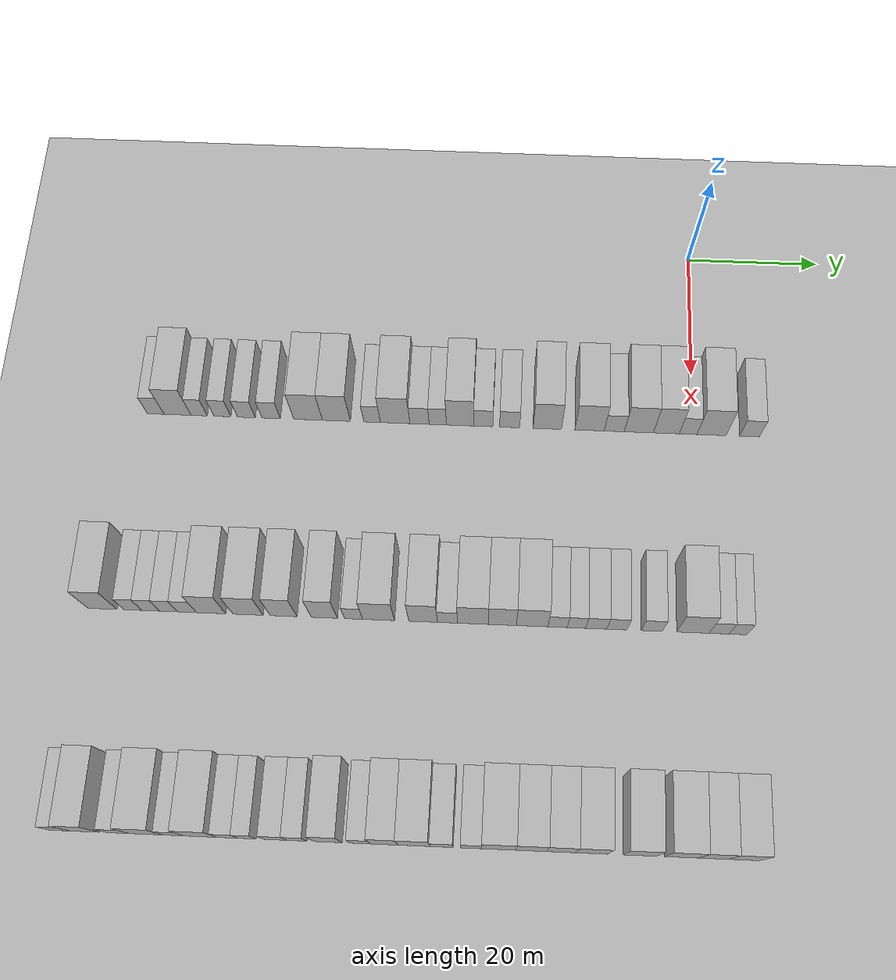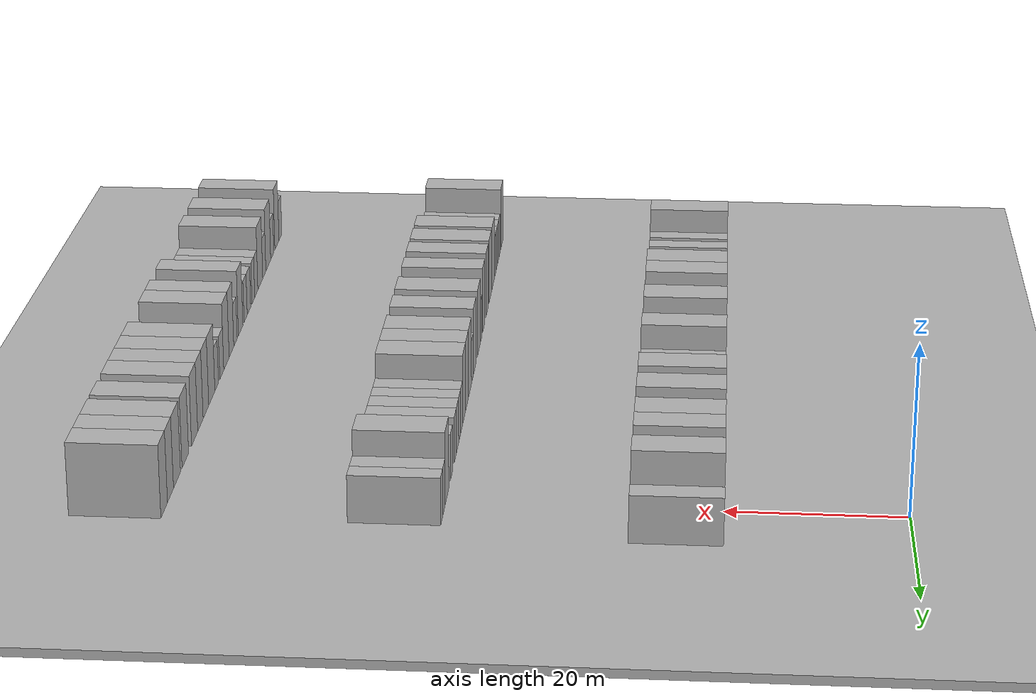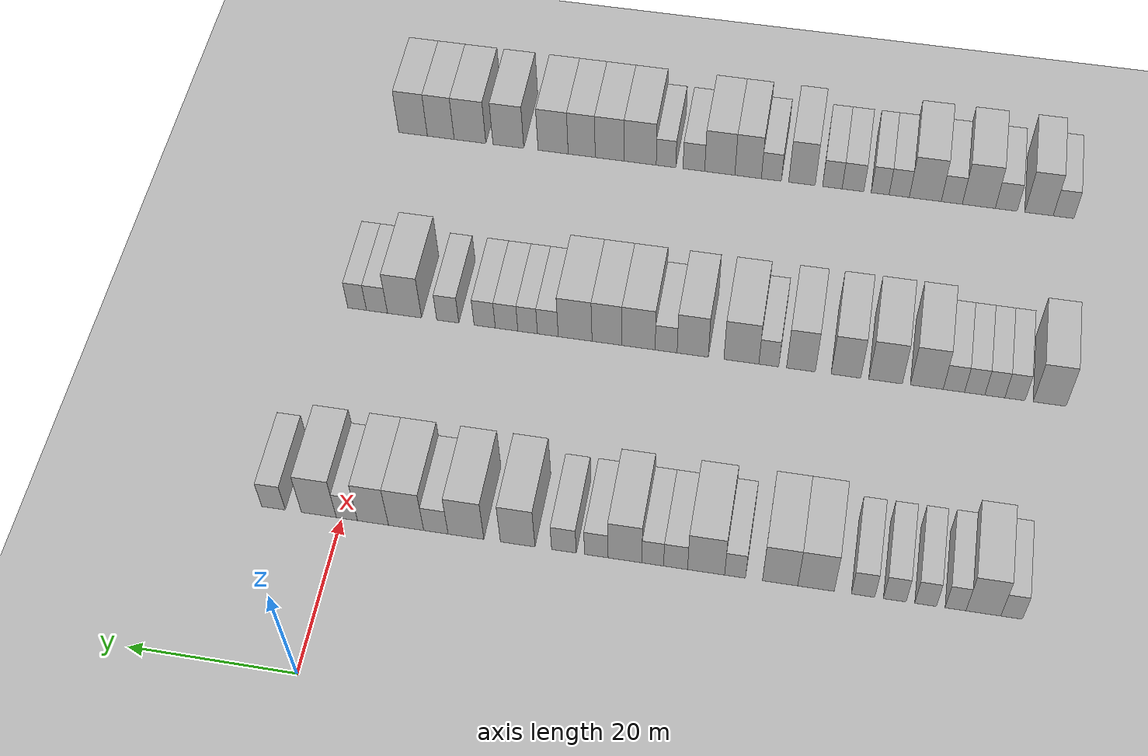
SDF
<sdf version="1.6">
 <world name="default">
  <include><name>ground_plane_1</name><uri>model://HANNAS_ground_plane</uri></include>
  <include>
   <name>ground_plane_2</name>
   <uri>model://HANNAS_ground_plane</uri>
   <pose>100 0 0  0 0 0</pose>
  </include>
  <model name="building_42">
   <static>1</static>
   <pose>25.0000 -79.7452 0 0.000000 0.000000 0.000000</pose>
   <link name="link">
    <pose>0 0 3.00 0 0 0</pose>
    <collision name="collision"><geometry><box><size>10.0000 2.4832 6.0000</size></box></geometry></collision>
    <visual name="visual">
     <cast_shadows>0</cast_shadows>
     <geometry><box><size>10.0000 2.4832 6.0000</size></box></geometry>
     <material>
      <script>
       <uri>model://HANNAS_wall/materials/scripts</uri>
       <uri>model://HANNAS_wall/materials/textures</uri>
       <name>vrc/HANNAS_wall</name>
      </script>
     </material>
    </visual>
   </link>
  </model>
  <model name="building_43">
   <static>1</static>
   <pose>25.0000 -76.4897 0 0.000000 0.000000 0.000000</pose>
   <link name="link">
    <pose>0 0 4.50 0 0 0</pose>
    <collision name="collision"><geometry><box><size>10.0000 4.0279 9.0000</size></box></geometry></collision>
    <visual name="visual">
     <cast_shadows>0</cast_shadows>
     <geometry><box><size>10.0000 4.0279 9.0000</size></box></geometry>
     <material>
      <script>
       <uri>model://HANNAS_wall/materials/scripts</uri>
       <uri>model://HANNAS_wall/materials/textures</uri>
       <name>vrc/HANNAS_wall</name>
      </script>
     </material>
    </visual>
   </link>
  </model>
  <model name="building_44">
   <static>1</static>
   <pose>25.0000 -73.2714 0 0.000000 0.000000 0.000000</pose>
   <link name="link">
    <pose>0 0 3.00 0 0 0</pose>
    <collision name="collision"><geometry><box><size>10.0000 2.4085 6.0000</size></box></geometry></collision>
    <visual name="visual">
     <cast_shadows>0</cast_shadows>
     <geometry><box><size>10.0000 2.4085 6.0000</size></box></geometry>
     <material>
      <script>
       <uri>model://HANNAS_wall/materials/scripts</uri>
       <uri>model://HANNAS_wall/materials/textures</uri>
       <name>vrc/HANNAS_wall</name>
      </script>
     </material>
    </visual>
   </link>
  </model>
  <model name="building_45">
   <static>1</static>
   <pose>25.0000 -69.8093 0 0.000000 0.000000 0.000000</pose>
   <link name="link">
    <pose>0 0 3.00 0 0 0</pose>
    <collision name="collision"><geometry><box><size>10.0000 2.5157 6.0000</size></box></geometry></collision>
    <visual name="visual">
     <cast_shadows>0</cast_shadows>
     <geometry><box><size>10.0000 2.5157 6.0000</size></box></geometry>
     <material>
      <script>
       <uri>model://HANNAS_wall/materials/scripts</uri>
       <uri>model://HANNAS_wall/materials/textures</uri>
       <name>vrc/HANNAS_wall</name>
      </script>
     </material>
    </visual>
   </link>
  </model>
  <model name="building_46">
   <static>1</static>
   <pose>25.0000 -66.2287 0 0.000000 0.000000 0.000000</pose>
   <link name="link">
    <pose>0 0 3.00 0 0 0</pose>
    <collision name="collision"><geometry><box><size>10.0000 2.6454 6.0000</size></box></geometry></collision>
    <visual name="visual">
     <cast_shadows>0</cast_shadows>
     <geometry><box><size>10.0000 2.6454 6.0000</size></box></geometry>
     <material>
      <script>
       <uri>model://HANNAS_wall/materials/scripts</uri>
       <uri>model://HANNAS_wall/materials/textures</uri>
       <name>vrc/HANNAS_wall</name>
      </script>
     </material>
    </visual>
   </link>
  </model>
  <model name="building_47">
   <static>1</static>
   <pose>25.0000 -62.5404 0 0.000000 0.000000 0.000000</pose>
   <link name="link">
    <pose>0 0 3.00 0 0 0</pose>
    <collision name="collision"><geometry><box><size>10.0000 2.7313 6.0000</size></box></geometry></collision>
    <visual name="visual">
     <cast_shadows>0</cast_shadows>
     <geometry><box><size>10.0000 2.7313 6.0000</size></box></geometry>
     <material>
      <script>
       <uri>model://HANNAS_wall/materials/scripts</uri>
       <uri>model://HANNAS_wall/materials/textures</uri>
       <name>vrc/HANNAS_wall</name>
      </script>
     </material>
    </visual>
   </link>
  </model>
  <model name="building_48">
   <static>1</static>
   <pose>25.0000 -57.0368 0 0.000000 0.000000 0.000000</pose>
   <link name="link">
    <pose>0 0 4.50 0 0 0</pose>
    <collision name="collision"><geometry><box><size>10.0000 4.2758 9.0000</size></box></geometry></collision>
    <visual name="visual">
     <cast_shadows>0</cast_shadows>
     <geometry><box><size>10.0000 4.2758 9.0000</size></box></geometry>
     <material>
      <script>
       <uri>model://HANNAS_wall/materials/scripts</uri>
       <uri>model://HANNAS_wall/materials/textures</uri>
       <name>vrc/HANNAS_wall</name>
      </script>
     </material>
    </visual>
   </link>
  </model>
  <model name="building_49">
   <static>1</static>
   <pose>25.0000 -52.8208 0 0.000000 0.000000 0.000000</pose>
   <link name="link">
    <pose>0 0 4.50 0 0 0</pose>
    <collision name="collision"><geometry><box><size>10.0000 4.1561 9.0000</size></box></geometry></collision>
    <visual name="visual">
     <cast_shadows>0</cast_shadows>
     <geometry><box><size>10.0000 4.1561 9.0000</size></box></geometry>
     <material>
      <script>
       <uri>model://HANNAS_wall/materials/scripts</uri>
       <uri>model://HANNAS_wall/materials/textures</uri>
       <name>vrc/HANNAS_wall</name>
      </script>
     </material>
    </visual>
   </link>
  </model>
  <model name="building_50">
   <static>1</static>
   <pose>25.0000 -47.5101 0 0.000000 0.000000 0.000000</pose>
   <link name="link">
    <pose>0 0 3.00 0 0 0</pose>
    <collision name="collision"><geometry><box><size>10.0000 2.4654 6.0000</size></box></geometry></collision>
    <visual name="visual">
     <cast_shadows>0</cast_shadows>
     <geometry><box><size>10.0000 2.4654 6.0000</size></box></geometry>
     <material>
      <script>
       <uri>model://HANNAS_wall/materials/scripts</uri>
       <uri>model://HANNAS_wall/materials/textures</uri>
       <name>vrc/HANNAS_wall</name>
      </script>
     </material>
    </visual>
   </link>
  </model>
  <model name="building_51">
   <static>1</static>
   <pose>25.0000 -44.0812 0 0.000000 0.000000 0.000000</pose>
   <link name="link">
    <pose>0 0 4.50 0 0 0</pose>
    <collision name="collision"><geometry><box><size>10.0000 4.3923 9.0000</size></box></geometry></collision>
    <visual name="visual">
     <cast_shadows>0</cast_shadows>
     <geometry><box><size>10.0000 4.3923 9.0000</size></box></geometry>
     <material>
      <script>
       <uri>model://HANNAS_wall/materials/scripts</uri>
       <uri>model://HANNAS_wall/materials/textures</uri>
       <name>vrc/HANNAS_wall</name>
      </script>
     </material>
    </visual>
   </link>
  </model>
  <model name="building_52">
   <static>1</static>
   <pose>25.0000 -40.4654 0 0.000000 0.000000 0.000000</pose>
   <link name="link">
    <pose>0 0 3.00 0 0 0</pose>
    <collision name="collision"><geometry><box><size>10.0000 2.8393 6.0000</size></box></geometry></collision>
    <visual name="visual">
     <cast_shadows>0</cast_shadows>
     <geometry><box><size>10.0000 2.8393 6.0000</size></box></geometry>
     <material>
      <script>
       <uri>model://HANNAS_wall/materials/scripts</uri>
       <uri>model://HANNAS_wall/materials/textures</uri>
       <name>vrc/HANNAS_wall</name>
      </script>
     </material>
    </visual>
   </link>
  </model>
  <model name="building_53">
   <static>1</static>
   <pose>25.0000 -37.7545 0 0.000000 0.000000 0.000000</pose>
   <link name="link">
    <pose>0 0 3.00 0 0 0</pose>
    <collision name="collision"><geometry><box><size>10.0000 2.5824 6.0000</size></box></geometry></collision>
    <visual name="visual">
     <cast_shadows>0</cast_shadows>
     <geometry><box><size>10.0000 2.5824 6.0000</size></box></geometry>
     <material>
      <script>
       <uri>model://HANNAS_wall/materials/scripts</uri>
       <uri>model://HANNAS_wall/materials/textures</uri>
       <name>vrc/HANNAS_wall</name>
      </script>
     </material>
    </visual>
   </link>
  </model>
  <model name="building_54">
   <static>1</static>
   <pose>25.0000 -34.4420 0 0.000000 0.000000 0.000000</pose>
   <link name="link">
    <pose>0 0 4.50 0 0 0</pose>
    <collision name="collision"><geometry><box><size>10.0000 4.0427 9.0000</size></box></geometry></collision>
    <visual name="visual">
     <cast_shadows>0</cast_shadows>
     <geometry><box><size>10.0000 4.0427 9.0000</size></box></geometry>
     <material>
      <script>
       <uri>model://HANNAS_wall/materials/scripts</uri>
       <uri>model://HANNAS_wall/materials/textures</uri>
       <name>vrc/HANNAS_wall</name>
      </script>
     </material>
    </visual>
   </link>
  </model>
  <model name="building_55">
   <static>1</static>
   <pose>25.0000 -31.0102 0 0.000000 0.000000 0.000000</pose>
   <link name="link">
    <pose>0 0 3.00 0 0 0</pose>
    <collision name="collision"><geometry><box><size>10.0000 2.8209 6.0000</size></box></geometry></collision>
    <visual name="visual">
     <cast_shadows>0</cast_shadows>
     <geometry><box><size>10.0000 2.8209 6.0000</size></box></geometry>
     <material>
      <script>
       <uri>model://HANNAS_wall/materials/scripts</uri>
       <uri>model://HANNAS_wall/materials/textures</uri>
       <name>vrc/HANNAS_wall</name>
      </script>
     </material>
    </visual>
   </link>
  </model>
  <model name="building_56">
   <static>1</static>
   <pose>25.0000 -27.1176 0 0.000000 0.000000 0.000000</pose>
   <link name="link">
    <pose>0 0 3.00 0 0 0</pose>
    <collision name="collision"><geometry><box><size>10.0000 2.9644 6.0000</size></box></geometry></collision>
    <visual name="visual">
     <cast_shadows>0</cast_shadows>
     <geometry><box><size>10.0000 2.9644 6.0000</size></box></geometry>
     <material>
      <script>
       <uri>model://HANNAS_wall/materials/scripts</uri>
       <uri>model://HANNAS_wall/materials/textures</uri>
       <name>vrc/HANNAS_wall</name>
      </script>
     </material>
    </visual>
   </link>
  </model>
  <model name="building_57">
   <static>1</static>
   <pose>25.0000 -21.5413 0 0.000000 0.000000 0.000000</pose>
   <link name="link">
    <pose>0 0 4.50 0 0 0</pose>
    <collision name="collision"><geometry><box><size>10.0000 4.1881 9.0000</size></box></geometry></collision>
    <visual name="visual">
     <cast_shadows>0</cast_shadows>
     <geometry><box><size>10.0000 4.1881 9.0000</size></box></geometry>
     <material>
      <script>
       <uri>model://HANNAS_wall/materials/scripts</uri>
       <uri>model://HANNAS_wall/materials/textures</uri>
       <name>vrc/HANNAS_wall</name>
      </script>
     </material>
    </visual>
   </link>
  </model>
  <model name="building_58">
   <static>1</static>
   <pose>25.0000 -15.2742 0 0.000000 0.000000 0.000000</pose>
   <link name="link">
    <pose>0 0 4.50 0 0 0</pose>
    <collision name="collision"><geometry><box><size>10.0000 4.3461 9.0000</size></box></geometry></collision>
    <visual name="visual">
     <cast_shadows>0</cast_shadows>
     <geometry><box><size>10.0000 4.3461 9.0000</size></box></geometry>
     <material>
      <script>
       <uri>model://HANNAS_wall/materials/scripts</uri>
       <uri>model://HANNAS_wall/materials/textures</uri>
       <name>vrc/HANNAS_wall</name>
      </script>
     </material>
    </visual>
   </link>
  </model>
  <model name="building_59">
   <static>1</static>
   <pose>25.0000 -11.6156 0 0.000000 0.000000 0.000000</pose>
   <link name="link">
    <pose>0 0 3.00 0 0 0</pose>
    <collision name="collision"><geometry><box><size>10.0000 2.9710 6.0000</size></box></geometry></collision>
    <visual name="visual">
     <cast_shadows>0</cast_shadows>
     <geometry><box><size>10.0000 2.9710 6.0000</size></box></geometry>
     <material>
      <script>
       <uri>model://HANNAS_wall/materials/scripts</uri>
       <uri>model://HANNAS_wall/materials/textures</uri>
       <name>vrc/HANNAS_wall</name>
      </script>
     </material>
    </visual>
   </link>
  </model>
  <model name="building_60">
   <static>1</static>
   <pose>25.0000 -7.9813 0 0.000000 0.000000 0.000000</pose>
   <link name="link">
    <pose>0 0 4.50 0 0 0</pose>
    <collision name="collision"><geometry><box><size>10.0000 4.2976 9.0000</size></box></geometry></collision>
    <visual name="visual">
     <cast_shadows>0</cast_shadows>
     <geometry><box><size>10.0000 4.2976 9.0000</size></box></geometry>
     <material>
      <script>
       <uri>model://HANNAS_wall/materials/scripts</uri>
       <uri>model://HANNAS_wall/materials/textures</uri>
       <name>vrc/HANNAS_wall</name>
      </script>
     </material>
    </visual>
   </link>
  </model>
  <model name="building_61">
   <static>1</static>
   <pose>25.0000 -3.9279 0 0.000000 0.000000 0.000000</pose>
   <link name="link">
    <pose>0 0 4.50 0 0 0</pose>
    <collision name="collision"><geometry><box><size>10.0000 3.8093 9.0000</size></box></geometry></collision>
    <visual name="visual">
     <cast_shadows>0</cast_shadows>
     <geometry><box><size>10.0000 3.8093 9.0000</size></box></geometry>
     <material>
      <script>
       <uri>model://HANNAS_wall/materials/scripts</uri>
       <uri>model://HANNAS_wall/materials/textures</uri>
       <name>vrc/HANNAS_wall</name>
      </script>
     </material>
    </visual>
   </link>
  </model>
  <model name="building_62">
   <static>1</static>
   <pose>25.0000 -0.7198 0 0.000000 0.000000 0.000000</pose>
   <link name="link">
    <pose>0 0 3.00 0 0 0</pose>
    <collision name="collision"><geometry><box><size>10.0000 2.6068 6.0000</size></box></geometry></collision>
    <visual name="visual">
     <cast_shadows>0</cast_shadows>
     <geometry><box><size>10.0000 2.6068 6.0000</size></box></geometry>
     <material>
      <script>
       <uri>model://HANNAS_wall/materials/scripts</uri>
       <uri>model://HANNAS_wall/materials/textures</uri>
       <name>vrc/HANNAS_wall</name>
      </script>
     </material>
    </visual>
   </link>
  </model>
  <model name="building_63">
   <static>1</static>
   <pose>25.0000 2.7324 0 0.000000 0.000000 0.000000</pose>
   <link name="link">
    <pose>0 0 4.50 0 0 0</pose>
    <collision name="collision"><geometry><box><size>10.0000 4.2978 9.0000</size></box></geometry></collision>
    <visual name="visual">
     <cast_shadows>0</cast_shadows>
     <geometry><box><size>10.0000 4.2978 9.0000</size></box></geometry>
     <material>
      <script>
       <uri>model://HANNAS_wall/materials/scripts</uri>
       <uri>model://HANNAS_wall/materials/textures</uri>
       <name>vrc/HANNAS_wall</name>
      </script>
     </material>
    </visual>
   </link>
  </model>
  <model name="building_64">
   <static>1</static>
   <pose>25.0000 8.3389 0 0.000000 0.000000 0.000000</pose>
   <link name="link">
    <pose>0 0 3.00 0 0 0</pose>
    <collision name="collision"><geometry><box><size>10.0000 2.9151 6.0000</size></box></geometry></collision>
    <visual name="visual">
     <cast_shadows>0</cast_shadows>
     <geometry><box><size>10.0000 2.9151 6.0000</size></box></geometry>
     <material>
      <script>
       <uri>model://HANNAS_wall/materials/scripts</uri>
       <uri>model://HANNAS_wall/materials/textures</uri>
       <name>vrc/HANNAS_wall</name>
      </script>
     </material>
    </visual>
   </link>
  </model>
  <model name="building_188">
   <static>1</static>
   <pose>55.0000 -83.1391 0 0.000000 0.000000 0.000000</pose>
   <link name="link">
    <pose>0 0 4.50 0 0 0</pose>
    <collision name="collision"><geometry><box><size>10.0000 4.0843 9.0000</size></box></geometry></collision>
    <visual name="visual">
     <cast_shadows>0</cast_shadows>
     <geometry><box><size>10.0000 4.0843 9.0000</size></box></geometry>
     <material>
      <script>
       <uri>model://HANNAS_wall/materials/scripts</uri>
       <uri>model://HANNAS_wall/materials/textures</uri>
       <name>vrc/HANNAS_wall</name>
      </script>
     </material>
    </visual>
   </link>
  </model>
  <model name="building_189">
   <static>1</static>
   <pose>55.0000 -78.8417 0 0.000000 0.000000 0.000000</pose>
   <link name="link">
    <pose>0 0 3.00 0 0 0</pose>
    <collision name="collision"><geometry><box><size>10.0000 2.5105 6.0000</size></box></geometry></collision>
    <visual name="visual">
     <cast_shadows>0</cast_shadows>
     <geometry><box><size>10.0000 2.5105 6.0000</size></box></geometry>
     <material>
      <script>
       <uri>model://HANNAS_wall/materials/scripts</uri>
       <uri>model://HANNAS_wall/materials/textures</uri>
       <name>vrc/HANNAS_wall</name>
      </script>
     </material>
    </visual>
   </link>
  </model>
  <model name="building_190">
   <static>1</static>
   <pose>55.0000 -76.3441 0 0.000000 0.000000 0.000000</pose>
   <link name="link">
    <pose>0 0 3.00 0 0 0</pose>
    <collision name="collision"><geometry><box><size>10.0000 2.4847 6.0000</size></box></geometry></collision>
    <visual name="visual">
     <cast_shadows>0</cast_shadows>
     <geometry><box><size>10.0000 2.4847 6.0000</size></box></geometry>
     <material>
      <script>
       <uri>model://HANNAS_wall/materials/scripts</uri>
       <uri>model://HANNAS_wall/materials/textures</uri>
       <name>vrc/HANNAS_wall</name>
      </script>
     </material>
    </visual>
   </link>
  </model>
  <model name="building_191">
   <static>1</static>
   <pose>55.0000 -73.8349 0 0.000000 0.000000 0.000000</pose>
   <link name="link">
    <pose>0 0 3.00 0 0 0</pose>
    <collision name="collision"><geometry><box><size>10.0000 2.5338 6.0000</size></box></geometry></collision>
    <visual name="visual">
     <cast_shadows>0</cast_shadows>
     <geometry><box><size>10.0000 2.5338 6.0000</size></box></geometry>
     <material>
      <script>
       <uri>model://HANNAS_wall/materials/scripts</uri>
       <uri>model://HANNAS_wall/materials/textures</uri>
       <name>vrc/HANNAS_wall</name>
      </script>
     </material>
    </visual>
   </link>
  </model>
  <model name="building_192">
   <static>1</static>
   <pose>55.0000 -71.2370 0 0.000000 0.000000 0.000000</pose>
   <link name="link">
    <pose>0 0 3.00 0 0 0</pose>
    <collision name="collision"><geometry><box><size>10.0000 2.6620 6.0000</size></box></geometry></collision>
    <visual name="visual">
     <cast_shadows>0</cast_shadows>
     <geometry><box><size>10.0000 2.6620 6.0000</size></box></geometry>
     <material>
      <script>
       <uri>model://HANNAS_wall/materials/scripts</uri>
       <uri>model://HANNAS_wall/materials/textures</uri>
       <name>vrc/HANNAS_wall</name>
      </script>
     </material>
    </visual>
   </link>
  </model>
  <model name="building_193">
   <static>1</static>
   <pose>55.0000 -67.8460 0 0.000000 0.000000 0.000000</pose>
   <link name="link">
    <pose>0 0 4.50 0 0 0</pose>
    <collision name="collision"><geometry><box><size>10.0000 4.1200 9.0000</size></box></geometry></collision>
    <visual name="visual">
     <cast_shadows>0</cast_shadows>
     <geometry><box><size>10.0000 4.1200 9.0000</size></box></geometry>
     <material>
      <script>
       <uri>model://HANNAS_wall/materials/scripts</uri>
       <uri>model://HANNAS_wall/materials/textures</uri>
       <name>vrc/HANNAS_wall</name>
      </script>
     </material>
    </visual>
   </link>
  </model>
  <model name="building_194">
   <static>1</static>
   <pose>55.0000 -62.6697 0 0.000000 0.000000 0.000000</pose>
   <link name="link">
    <pose>0 0 4.50 0 0 0</pose>
    <collision name="collision"><geometry><box><size>10.0000 4.2326 9.0000</size></box></geometry></collision>
    <visual name="visual">
     <cast_shadows>0</cast_shadows>
     <geometry><box><size>10.0000 4.2326 9.0000</size></box></geometry>
     <material>
      <script>
       <uri>model://HANNAS_wall/materials/scripts</uri>
       <uri>model://HANNAS_wall/materials/textures</uri>
       <name>vrc/HANNAS_wall</name>
      </script>
     </material>
    </visual>
   </link>
  </model>
  <model name="building_195">
   <static>1</static>
   <pose>55.0000 -57.6789 0 0.000000 0.000000 0.000000</pose>
   <link name="link">
    <pose>0 0 4.50 0 0 0</pose>
    <collision name="collision"><geometry><box><size>10.0000 3.7491 9.0000</size></box></geometry></collision>
    <visual name="visual">
     <cast_shadows>0</cast_shadows>
     <geometry><box><size>10.0000 3.7491 9.0000</size></box></geometry>
     <material>
      <script>
       <uri>model://HANNAS_wall/materials/scripts</uri>
       <uri>model://HANNAS_wall/materials/textures</uri>
       <name>vrc/HANNAS_wall</name>
      </script>
     </material>
    </visual>
   </link>
  </model>
  <model name="building_196">
   <static>1</static>
   <pose>55.0000 -51.9782 0 0.000000 0.000000 0.000000</pose>
   <link name="link">
    <pose>0 0 4.50 0 0 0</pose>
    <collision name="collision"><geometry><box><size>10.0000 3.6521 9.0000</size></box></geometry></collision>
    <visual name="visual">
     <cast_shadows>0</cast_shadows>
     <geometry><box><size>10.0000 3.6521 9.0000</size></box></geometry>
     <material>
      <script>
       <uri>model://HANNAS_wall/materials/scripts</uri>
       <uri>model://HANNAS_wall/materials/textures</uri>
       <name>vrc/HANNAS_wall</name>
      </script>
     </material>
    </visual>
   </link>
  </model>
  <model name="building_197">
   <static>1</static>
   <pose>55.0000 -47.8846 0 0.000000 0.000000 0.000000</pose>
   <link name="link">
    <pose>0 0 3.00 0 0 0</pose>
    <collision name="collision"><geometry><box><size>10.0000 2.5351 6.0000</size></box></geometry></collision>
    <visual name="visual">
     <cast_shadows>0</cast_shadows>
     <geometry><box><size>10.0000 2.5351 6.0000</size></box></geometry>
     <material>
      <script>
       <uri>model://HANNAS_wall/materials/scripts</uri>
       <uri>model://HANNAS_wall/materials/textures</uri>
       <name>vrc/HANNAS_wall</name>
      </script>
     </material>
    </visual>
   </link>
  </model>
  <model name="building_198">
   <static>1</static>
   <pose>55.0000 -44.3919 0 0.000000 0.000000 0.000000</pose>
   <link name="link">
    <pose>0 0 4.50 0 0 0</pose>
    <collision name="collision"><geometry><box><size>10.0000 4.4504 9.0000</size></box></geometry></collision>
    <visual name="visual">
     <cast_shadows>0</cast_shadows>
     <geometry><box><size>10.0000 4.4504 9.0000</size></box></geometry>
     <material>
      <script>
       <uri>model://HANNAS_wall/materials/scripts</uri>
       <uri>model://HANNAS_wall/materials/textures</uri>
       <name>vrc/HANNAS_wall</name>
      </script>
     </material>
    </visual>
   </link>
  </model>
  <model name="building_199">
   <static>1</static>
   <pose>55.0000 -38.1672 0 0.000000 0.000000 0.000000</pose>
   <link name="link">
    <pose>0 0 4.50 0 0 0</pose>
    <collision name="collision"><geometry><box><size>10.0000 3.9991 9.0000</size></box></geometry></collision>
    <visual name="visual">
     <cast_shadows>0</cast_shadows>
     <geometry><box><size>10.0000 3.9991 9.0000</size></box></geometry>
     <material>
      <script>
       <uri>model://HANNAS_wall/materials/scripts</uri>
       <uri>model://HANNAS_wall/materials/textures</uri>
       <name>vrc/HANNAS_wall</name>
      </script>
     </material>
    </visual>
   </link>
  </model>
  <model name="building_200">
   <static>1</static>
   <pose>55.0000 -34.7589 0 0.000000 0.000000 0.000000</pose>
   <link name="link">
    <pose>0 0 3.00 0 0 0</pose>
    <collision name="collision"><geometry><box><size>10.0000 2.8174 6.0000</size></box></geometry></collision>
    <visual name="visual">
     <cast_shadows>0</cast_shadows>
     <geometry><box><size>10.0000 2.8174 6.0000</size></box></geometry>
     <material>
      <script>
       <uri>model://HANNAS_wall/materials/scripts</uri>
       <uri>model://HANNAS_wall/materials/textures</uri>
       <name>vrc/HANNAS_wall</name>
      </script>
     </material>
    </visual>
   </link>
  </model>
  <model name="building_201">
   <static>1</static>
   <pose>55.0000 -31.2148 0 0.000000 0.000000 0.000000</pose>
   <link name="link">
    <pose>0 0 4.50 0 0 0</pose>
    <collision name="collision"><geometry><box><size>10.0000 4.2709 9.0000</size></box></geometry></collision>
    <visual name="visual">
     <cast_shadows>0</cast_shadows>
     <geometry><box><size>10.0000 4.2709 9.0000</size></box></geometry>
     <material>
      <script>
       <uri>model://HANNAS_wall/materials/scripts</uri>
       <uri>model://HANNAS_wall/materials/textures</uri>
       <name>vrc/HANNAS_wall</name>
      </script>
     </material>
    </visual>
   </link>
  </model>
  <model name="building_202">
   <static>1</static>
   <pose>55.0000 -27.1377 0 0.000000 0.000000 0.000000</pose>
   <link name="link">
    <pose>0 0 4.50 0 0 0</pose>
    <collision name="collision"><geometry><box><size>10.0000 3.8833 9.0000</size></box></geometry></collision>
    <visual name="visual">
     <cast_shadows>0</cast_shadows>
     <geometry><box><size>10.0000 3.8833 9.0000</size></box></geometry>
     <material>
      <script>
       <uri>model://HANNAS_wall/materials/scripts</uri>
       <uri>model://HANNAS_wall/materials/textures</uri>
       <name>vrc/HANNAS_wall</name>
      </script>
     </material>
    </visual>
   </link>
  </model>
  <model name="building_203">
   <static>1</static>
   <pose>55.0000 -22.9985 0 0.000000 0.000000 0.000000</pose>
   <link name="link">
    <pose>0 0 4.50 0 0 0</pose>
    <collision name="collision"><geometry><box><size>10.0000 4.3950 9.0000</size></box></geometry></collision>
    <visual name="visual">
     <cast_shadows>0</cast_shadows>
     <geometry><box><size>10.0000 4.3950 9.0000</size></box></geometry>
     <material>
      <script>
       <uri>model://HANNAS_wall/materials/scripts</uri>
       <uri>model://HANNAS_wall/materials/textures</uri>
       <name>vrc/HANNAS_wall</name>
      </script>
     </material>
    </visual>
   </link>
  </model>
  <model name="building_204">
   <static>1</static>
   <pose>55.0000 -19.4506 0 0.000000 0.000000 0.000000</pose>
   <link name="link">
    <pose>0 0 3.00 0 0 0</pose>
    <collision name="collision"><geometry><box><size>10.0000 2.7008 6.0000</size></box></geometry></collision>
    <visual name="visual">
     <cast_shadows>0</cast_shadows>
     <geometry><box><size>10.0000 2.7008 6.0000</size></box></geometry>
     <material>
      <script>
       <uri>model://HANNAS_wall/materials/scripts</uri>
       <uri>model://HANNAS_wall/materials/textures</uri>
       <name>vrc/HANNAS_wall</name>
      </script>
     </material>
    </visual>
   </link>
  </model>
  <model name="building_205">
   <static>1</static>
   <pose>55.0000 -16.8247 0 0.000000 0.000000 0.000000</pose>
   <link name="link">
    <pose>0 0 3.00 0 0 0</pose>
    <collision name="collision"><geometry><box><size>10.0000 2.5511 6.0000</size></box></geometry></collision>
    <visual name="visual">
     <cast_shadows>0</cast_shadows>
     <geometry><box><size>10.0000 2.5511 6.0000</size></box></geometry>
     <material>
      <script>
       <uri>model://HANNAS_wall/materials/scripts</uri>
       <uri>model://HANNAS_wall/materials/textures</uri>
       <name>vrc/HANNAS_wall</name>
      </script>
     </material>
    </visual>
   </link>
  </model>
  <model name="building_206">
   <static>1</static>
   <pose>55.0000 -14.0713 0 0.000000 0.000000 0.000000</pose>
   <link name="link">
    <pose>0 0 3.00 0 0 0</pose>
    <collision name="collision"><geometry><box><size>10.0000 2.9557 6.0000</size></box></geometry></collision>
    <visual name="visual">
     <cast_shadows>0</cast_shadows>
     <geometry><box><size>10.0000 2.9557 6.0000</size></box></geometry>
     <material>
      <script>
       <uri>model://HANNAS_wall/materials/scripts</uri>
       <uri>model://HANNAS_wall/materials/textures</uri>
       <name>vrc/HANNAS_wall</name>
      </script>
     </material>
    </visual>
   </link>
  </model>
  <model name="building_207">
   <static>1</static>
   <pose>55.0000 -11.1996 0 0.000000 0.000000 0.000000</pose>
   <link name="link">
    <pose>0 0 3.00 0 0 0</pose>
    <collision name="collision"><geometry><box><size>10.0000 2.7877 6.0000</size></box></geometry></collision>
    <visual name="visual">
     <cast_shadows>0</cast_shadows>
     <geometry><box><size>10.0000 2.7877 6.0000</size></box></geometry>
     <material>
      <script>
       <uri>model://HANNAS_wall/materials/scripts</uri>
       <uri>model://HANNAS_wall/materials/textures</uri>
       <name>vrc/HANNAS_wall</name>
      </script>
     </material>
    </visual>
   </link>
  </model>
  <model name="building_208">
   <static>1</static>
   <pose>55.0000 -6.3514 0 0.000000 0.000000 0.000000</pose>
   <link name="link">
    <pose>0 0 3.00 0 0 0</pose>
    <collision name="collision"><geometry><box><size>10.0000 2.9088 6.0000</size></box></geometry></collision>
    <visual name="visual">
     <cast_shadows>0</cast_shadows>
     <geometry><box><size>10.0000 2.9088 6.0000</size></box></geometry>
     <material>
      <script>
       <uri>model://HANNAS_wall/materials/scripts</uri>
       <uri>model://HANNAS_wall/materials/textures</uri>
       <name>vrc/HANNAS_wall</name>
      </script>
     </material>
    </visual>
   </link>
  </model>
  <model name="building_209">
   <static>1</static>
   <pose>55.0000 -0.6499 0 0.000000 0.000000 0.000000</pose>
   <link name="link">
    <pose>0 0 4.50 0 0 0</pose>
    <collision name="collision"><geometry><box><size>10.0000 4.4941 9.0000</size></box></geometry></collision>
    <visual name="visual">
     <cast_shadows>0</cast_shadows>
     <geometry><box><size>10.0000 4.4941 9.0000</size></box></geometry>
     <material>
      <script>
       <uri>model://HANNAS_wall/materials/scripts</uri>
       <uri>model://HANNAS_wall/materials/textures</uri>
       <name>vrc/HANNAS_wall</name>
      </script>
     </material>
    </visual>
   </link>
  </model>
  <model name="building_210">
   <static>1</static>
   <pose>55.0000 2.9929 0 0.000000 0.000000 0.000000</pose>
   <link name="link">
    <pose>0 0 3.00 0 0 0</pose>
    <collision name="collision"><geometry><box><size>10.0000 2.7914 6.0000</size></box></geometry></collision>
    <visual name="visual">
     <cast_shadows>0</cast_shadows>
     <geometry><box><size>10.0000 2.7914 6.0000</size></box></geometry>
     <material>
      <script>
       <uri>model://HANNAS_wall/materials/scripts</uri>
       <uri>model://HANNAS_wall/materials/textures</uri>
       <name>vrc/HANNAS_wall</name>
      </script>
     </material>
    </visual>
   </link>
  </model>
  <model name="building_211">
   <static>1</static>
   <pose>55.0000 5.6266 0 0.000000 0.000000 0.000000</pose>
   <link name="link">
    <pose>0 0 3.00 0 0 0</pose>
    <collision name="collision"><geometry><box><size>10.0000 2.4760 6.0000</size></box></geometry></collision>
    <visual name="visual">
     <cast_shadows>0</cast_shadows>
     <geometry><box><size>10.0000 2.4760 6.0000</size></box></geometry>
     <material>
      <script>
       <uri>model://HANNAS_wall/materials/scripts</uri>
       <uri>model://HANNAS_wall/materials/textures</uri>
       <name>vrc/HANNAS_wall</name>
      </script>
     </material>
    </visual>
   </link>
  </model>
  <model name="building_337">
   <static>1</static>
   <pose>85.0000 -84.0464 0 0.000000 0.000000 0.000000</pose>
   <link name="link">
    <pose>0 0 3.00 0 0 0</pose>
    <collision name="collision"><geometry><box><size>10.0000 2.7607 6.0000</size></box></geometry></collision>
    <visual name="visual">
     <cast_shadows>0</cast_shadows>
     <geometry><box><size>10.0000 2.7607 6.0000</size></box></geometry>
     <material>
      <script>
       <uri>model://HANNAS_wall/materials/scripts</uri>
       <uri>model://HANNAS_wall/materials/textures</uri>
       <name>vrc/HANNAS_wall</name>
      </script>
     </material>
    </visual>
   </link>
  </model>
  <model name="building_338">
   <static>1</static>
   <pose>85.0000 -80.7712 0 0.000000 0.000000 0.000000</pose>
   <link name="link">
    <pose>0 0 4.50 0 0 0</pose>
    <collision name="collision"><geometry><box><size>10.0000 3.7898 9.0000</size></box></geometry></collision>
    <visual name="visual">
     <cast_shadows>0</cast_shadows>
     <geometry><box><size>10.0000 3.7898 9.0000</size></box></geometry>
     <material>
      <script>
       <uri>model://HANNAS_wall/materials/scripts</uri>
       <uri>model://HANNAS_wall/materials/textures</uri>
       <name>vrc/HANNAS_wall</name>
      </script>
     </material>
    </visual>
   </link>
  </model>
  <model name="building_339">
   <static>1</static>
   <pose>85.0000 -76.4105 0 0.000000 0.000000 0.000000</pose>
   <link name="link">
    <pose>0 0 3.00 0 0 0</pose>
    <collision name="collision"><geometry><box><size>10.0000 2.9316 6.0000</size></box></geometry></collision>
    <visual name="visual">
     <cast_shadows>0</cast_shadows>
     <geometry><box><size>10.0000 2.9316 6.0000</size></box></geometry>
     <material>
      <script>
       <uri>model://HANNAS_wall/materials/scripts</uri>
       <uri>model://HANNAS_wall/materials/textures</uri>
       <name>vrc/HANNAS_wall</name>
      </script>
     </material>
    </visual>
   </link>
  </model>
  <model name="building_340">
   <static>1</static>
   <pose>85.0000 -72.7345 0 0.000000 0.000000 0.000000</pose>
   <link name="link">
    <pose>0 0 4.50 0 0 0</pose>
    <collision name="collision"><geometry><box><size>10.0000 4.4204 9.0000</size></box></geometry></collision>
    <visual name="visual">
     <cast_shadows>0</cast_shadows>
     <geometry><box><size>10.0000 4.4204 9.0000</size></box></geometry>
     <material>
      <script>
       <uri>model://HANNAS_wall/materials/scripts</uri>
       <uri>model://HANNAS_wall/materials/textures</uri>
       <name>vrc/HANNAS_wall</name>
      </script>
     </material>
    </visual>
   </link>
  </model>
  <model name="building_341">
   <static>1</static>
   <pose>85.0000 -69.1128 0 0.000000 0.000000 0.000000</pose>
   <link name="link">
    <pose>0 0 3.00 0 0 0</pose>
    <collision name="collision"><geometry><box><size>10.0000 2.8230 6.0000</size></box></geometry></collision>
    <visual name="visual">
     <cast_shadows>0</cast_shadows>
     <geometry><box><size>10.0000 2.8230 6.0000</size></box></geometry>
     <material>
      <script>
       <uri>model://HANNAS_wall/materials/scripts</uri>
       <uri>model://HANNAS_wall/materials/textures</uri>
       <name>vrc/HANNAS_wall</name>
      </script>
     </material>
    </visual>
   </link>
  </model>
  <model name="building_342">
   <static>1</static>
   <pose>85.0000 -65.5475 0 0.000000 0.000000 0.000000</pose>
   <link name="link">
    <pose>0 0 4.50 0 0 0</pose>
    <collision name="collision"><geometry><box><size>10.0000 4.3076 9.0000</size></box></geometry></collision>
    <visual name="visual">
     <cast_shadows>0</cast_shadows>
     <geometry><box><size>10.0000 4.3076 9.0000</size></box></geometry>
     <material>
      <script>
       <uri>model://HANNAS_wall/materials/scripts</uri>
       <uri>model://HANNAS_wall/materials/textures</uri>
       <name>vrc/HANNAS_wall</name>
      </script>
     </material>
    </visual>
   </link>
  </model>
  <model name="building_343">
   <static>1</static>
   <pose>85.0000 -62.0263 0 0.000000 0.000000 0.000000</pose>
   <link name="link">
    <pose>0 0 3.00 0 0 0</pose>
    <collision name="collision"><geometry><box><size>10.0000 2.7347 6.0000</size></box></geometry></collision>
    <visual name="visual">
     <cast_shadows>0</cast_shadows>
     <geometry><box><size>10.0000 2.7347 6.0000</size></box></geometry>
     <material>
      <script>
       <uri>model://HANNAS_wall/materials/scripts</uri>
       <uri>model://HANNAS_wall/materials/textures</uri>
       <name>vrc/HANNAS_wall</name>
      </script>
     </material>
    </visual>
   </link>
  </model>
  <model name="building_344">
   <static>1</static>
   <pose>85.0000 -59.4479 0 0.000000 0.000000 0.000000</pose>
   <link name="link">
    <pose>0 0 3.00 0 0 0</pose>
    <collision name="collision"><geometry><box><size>10.0000 2.4221 6.0000</size></box></geometry></collision>
    <visual name="visual">
     <cast_shadows>0</cast_shadows>
     <geometry><box><size>10.0000 2.4221 6.0000</size></box></geometry>
     <material>
      <script>
       <uri>model://HANNAS_wall/materials/scripts</uri>
       <uri>model://HANNAS_wall/materials/textures</uri>
       <name>vrc/HANNAS_wall</name>
      </script>
     </material>
    </visual>
   </link>
  </model>
  <model name="building_345">
   <static>1</static>
   <pose>85.0000 -55.7654 0 0.000000 0.000000 0.000000</pose>
   <link name="link">
    <pose>0 0 3.00 0 0 0</pose>
    <collision name="collision"><geometry><box><size>10.0000 2.9428 6.0000</size></box></geometry></collision>
    <visual name="visual">
     <cast_shadows>0</cast_shadows>
     <geometry><box><size>10.0000 2.9428 6.0000</size></box></geometry>
     <material>
      <script>
       <uri>model://HANNAS_wall/materials/scripts</uri>
       <uri>model://HANNAS_wall/materials/textures</uri>
       <name>vrc/HANNAS_wall</name>
      </script>
     </material>
    </visual>
   </link>
  </model>
  <model name="building_346">
   <static>1</static>
   <pose>85.0000 -52.9627 0 0.000000 0.000000 0.000000</pose>
   <link name="link">
    <pose>0 0 3.00 0 0 0</pose>
    <collision name="collision"><geometry><box><size>10.0000 2.6626 6.0000</size></box></geometry></collision>
    <visual name="visual">
     <cast_shadows>0</cast_shadows>
     <geometry><box><size>10.0000 2.6626 6.0000</size></box></geometry>
     <material>
      <script>
       <uri>model://HANNAS_wall/materials/scripts</uri>
       <uri>model://HANNAS_wall/materials/textures</uri>
       <name>vrc/HANNAS_wall</name>
      </script>
     </material>
    </visual>
   </link>
  </model>
  <model name="building_347">
   <static>1</static>
   <pose>85.0000 -48.8234 0 0.000000 0.000000 0.000000</pose>
   <link name="link">
    <pose>0 0 4.50 0 0 0</pose>
    <collision name="collision"><geometry><box><size>10.0000 3.6160 9.0000</size></box></geometry></collision>
    <visual name="visual">
     <cast_shadows>0</cast_shadows>
     <geometry><box><size>10.0000 3.6160 9.0000</size></box></geometry>
     <material>
      <script>
       <uri>model://HANNAS_wall/materials/scripts</uri>
       <uri>model://HANNAS_wall/materials/textures</uri>
       <name>vrc/HANNAS_wall</name>
      </script>
     </material>
    </visual>
   </link>
  </model>
  <model name="building_348">
   <static>1</static>
   <pose>85.0000 -44.6463 0 0.000000 0.000000 0.000000</pose>
   <link name="link">
    <pose>0 0 3.00 0 0 0</pose>
    <collision name="collision"><geometry><box><size>10.0000 2.7384 6.0000</size></box></geometry></collision>
    <visual name="visual">
     <cast_shadows>0</cast_shadows>
     <geometry><box><size>10.0000 2.7384 6.0000</size></box></geometry>
     <material>
      <script>
       <uri>model://HANNAS_wall/materials/scripts</uri>
       <uri>model://HANNAS_wall/materials/textures</uri>
       <name>vrc/HANNAS_wall</name>
      </script>
     </material>
    </visual>
   </link>
  </model>
  <model name="building_349">
   <static>1</static>
   <pose>85.0000 -41.4602 0 0.000000 0.000000 0.000000</pose>
   <link name="link">
    <pose>0 0 4.50 0 0 0</pose>
    <collision name="collision"><geometry><box><size>10.0000 3.6339 9.0000</size></box></geometry></collision>
    <visual name="visual">
     <cast_shadows>0</cast_shadows>
     <geometry><box><size>10.0000 3.6339 9.0000</size></box></geometry>
     <material>
      <script>
       <uri>model://HANNAS_wall/materials/scripts</uri>
       <uri>model://HANNAS_wall/materials/textures</uri>
       <name>vrc/HANNAS_wall</name>
      </script>
     </material>
    </visual>
   </link>
  </model>
  <model name="building_350">
   <static>1</static>
   <pose>85.0000 -37.5675 0 0.000000 0.000000 0.000000</pose>
   <link name="link">
    <pose>0 0 4.50 0 0 0</pose>
    <collision name="collision"><geometry><box><size>10.0000 4.1515 9.0000</size></box></geometry></collision>
    <visual name="visual">
     <cast_shadows>0</cast_shadows>
     <geometry><box><size>10.0000 4.1515 9.0000</size></box></geometry>
     <material>
      <script>
       <uri>model://HANNAS_wall/materials/scripts</uri>
       <uri>model://HANNAS_wall/materials/textures</uri>
       <name>vrc/HANNAS_wall</name>
      </script>
     </material>
    </visual>
   </link>
  </model>
  <model name="building_351">
   <static>1</static>
   <pose>85.0000 -34.0025 0 0.000000 0.000000 0.000000</pose>
   <link name="link">
    <pose>0 0 3.00 0 0 0</pose>
    <collision name="collision"><geometry><box><size>10.0000 2.9783 6.0000</size></box></geometry></collision>
    <visual name="visual">
     <cast_shadows>0</cast_shadows>
     <geometry><box><size>10.0000 2.9783 6.0000</size></box></geometry>
     <material>
      <script>
       <uri>model://HANNAS_wall/materials/scripts</uri>
       <uri>model://HANNAS_wall/materials/textures</uri>
       <name>vrc/HANNAS_wall</name>
      </script>
     </material>
    </visual>
   </link>
  </model>
  <model name="building_352">
   <static>1</static>
   <pose>85.0000 -30.1602 0 0.000000 0.000000 0.000000</pose>
   <link name="link">
    <pose>0 0 3.00 0 0 0</pose>
    <collision name="collision"><geometry><box><size>10.0000 2.7063 6.0000</size></box></geometry></collision>
    <visual name="visual">
     <cast_shadows>0</cast_shadows>
     <geometry><box><size>10.0000 2.7063 6.0000</size></box></geometry>
     <material>
      <script>
       <uri>model://HANNAS_wall/materials/scripts</uri>
       <uri>model://HANNAS_wall/materials/textures</uri>
       <name>vrc/HANNAS_wall</name>
      </script>
     </material>
    </visual>
   </link>
  </model>
  <model name="building_353">
   <static>1</static>
   <pose>85.0000 -26.5819 0 0.000000 0.000000 0.000000</pose>
   <link name="link">
    <pose>0 0 4.50 0 0 0</pose>
    <collision name="collision"><geometry><box><size>10.0000 4.4504 9.0000</size></box></geometry></collision>
    <visual name="visual">
     <cast_shadows>0</cast_shadows>
     <geometry><box><size>10.0000 4.4504 9.0000</size></box></geometry>
     <material>
      <script>
       <uri>model://HANNAS_wall/materials/scripts</uri>
       <uri>model://HANNAS_wall/materials/textures</uri>
       <name>vrc/HANNAS_wall</name>
      </script>
     </material>
    </visual>
   </link>
  </model>
  <model name="building_354">
   <static>1</static>
   <pose>85.0000 -22.3508 0 0.000000 0.000000 0.000000</pose>
   <link name="link">
    <pose>0 0 4.50 0 0 0</pose>
    <collision name="collision"><geometry><box><size>10.0000 4.0118 9.0000</size></box></geometry></collision>
    <visual name="visual">
     <cast_shadows>0</cast_shadows>
     <geometry><box><size>10.0000 4.0118 9.0000</size></box></geometry>
     <material>
      <script>
       <uri>model://HANNAS_wall/materials/scripts</uri>
       <uri>model://HANNAS_wall/materials/textures</uri>
       <name>vrc/HANNAS_wall</name>
      </script>
     </material>
    </visual>
   </link>
  </model>
  <model name="building_355">
   <static>1</static>
   <pose>85.0000 -18.4539 0 0.000000 0.000000 0.000000</pose>
   <link name="link">
    <pose>0 0 4.50 0 0 0</pose>
    <collision name="collision"><geometry><box><size>10.0000 3.7820 9.0000</size></box></geometry></collision>
    <visual name="visual">
     <cast_shadows>0</cast_shadows>
     <geometry><box><size>10.0000 3.7820 9.0000</size></box></geometry>
     <material>
      <script>
       <uri>model://HANNAS_wall/materials/scripts</uri>
       <uri>model://HANNAS_wall/materials/textures</uri>
       <name>vrc/HANNAS_wall</name>
      </script>
     </material>
    </visual>
   </link>
  </model>
  <model name="building_356">
   <static>1</static>
   <pose>85.0000 -14.4564 0 0.000000 0.000000 0.000000</pose>
   <link name="link">
    <pose>0 0 4.50 0 0 0</pose>
    <collision name="collision"><geometry><box><size>10.0000 4.2129 9.0000</size></box></geometry></collision>
    <visual name="visual">
     <cast_shadows>0</cast_shadows>
     <geometry><box><size>10.0000 4.2129 9.0000</size></box></geometry>
     <material>
      <script>
       <uri>model://HANNAS_wall/materials/scripts</uri>
       <uri>model://HANNAS_wall/materials/textures</uri>
       <name>vrc/HANNAS_wall</name>
      </script>
     </material>
    </visual>
   </link>
  </model>
  <model name="building_357">
   <static>1</static>
   <pose>85.0000 -8.1827 0 0.000000 0.000000 0.000000</pose>
   <link name="link">
    <pose>0 0 4.50 0 0 0</pose>
    <collision name="collision"><geometry><box><size>10.0000 4.3346 9.0000</size></box></geometry></collision>
    <visual name="visual">
     <cast_shadows>0</cast_shadows>
     <geometry><box><size>10.0000 4.3346 9.0000</size></box></geometry>
     <material>
      <script>
       <uri>model://HANNAS_wall/materials/scripts</uri>
       <uri>model://HANNAS_wall/materials/textures</uri>
       <name>vrc/HANNAS_wall</name>
      </script>
     </material>
    </visual>
   </link>
  </model>
  <model name="building_358">
   <static>1</static>
   <pose>85.0000 -2.7782 0 0.000000 0.000000 0.000000</pose>
   <link name="link">
    <pose>0 0 4.50 0 0 0</pose>
    <collision name="collision"><geometry><box><size>10.0000 4.4743 9.0000</size></box></geometry></collision>
    <visual name="visual">
     <cast_shadows>0</cast_shadows>
     <geometry><box><size>10.0000 4.4743 9.0000</size></box></geometry>
     <material>
      <script>
       <uri>model://HANNAS_wall/materials/scripts</uri>
       <uri>model://HANNAS_wall/materials/textures</uri>
       <name>vrc/HANNAS_wall</name>
      </script>
     </material>
    </visual>
   </link>
  </model>
  <model name="building_359">
   <static>1</static>
   <pose>85.0000 1.3520 0 0.000000 0.000000 0.000000</pose>
   <link name="link">
    <pose>0 0 4.50 0 0 0</pose>
    <collision name="collision"><geometry><box><size>10.0000 3.7861 9.0000</size></box></geometry></collision>
    <visual name="visual">
     <cast_shadows>0</cast_shadows>
     <geometry><box><size>10.0000 3.7861 9.0000</size></box></geometry>
     <material>
      <script>
       <uri>model://HANNAS_wall/materials/scripts</uri>
       <uri>model://HANNAS_wall/materials/textures</uri>
       <name>vrc/HANNAS_wall</name>
      </script>
     </material>
    </visual>
   </link>
  </model>
  <model name="building_360">
   <static>1</static>
   <pose>85.0000 5.2796 0 0.000000 0.000000 0.000000</pose>
   <link name="link">
    <pose>0 0 4.50 0 0 0</pose>
    <collision name="collision"><geometry><box><size>10.0000 4.0692 9.0000</size></box></geometry></collision>
    <visual name="visual">
     <cast_shadows>0</cast_shadows>
     <geometry><box><size>10.0000 4.0692 9.0000</size></box></geometry>
     <material>
      <script>
       <uri>model://HANNAS_wall/materials/scripts</uri>
       <uri>model://HANNAS_wall/materials/textures</uri>
       <name>vrc/HANNAS_wall</name>
      </script>
     </material>
    </visual>
   </link>
  </model>
 </world>
</sdf>
